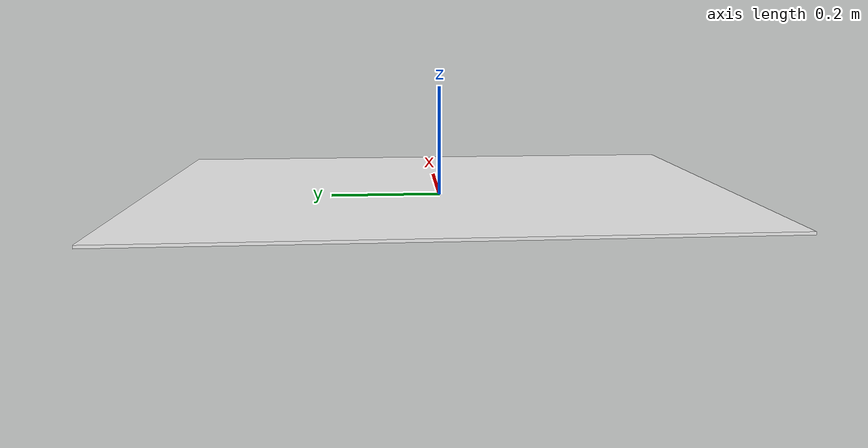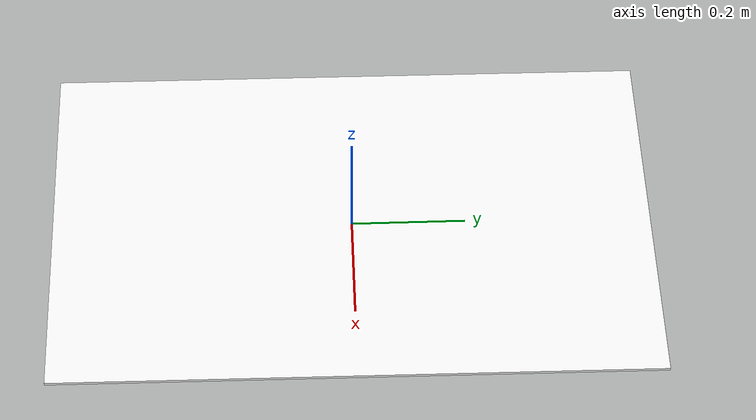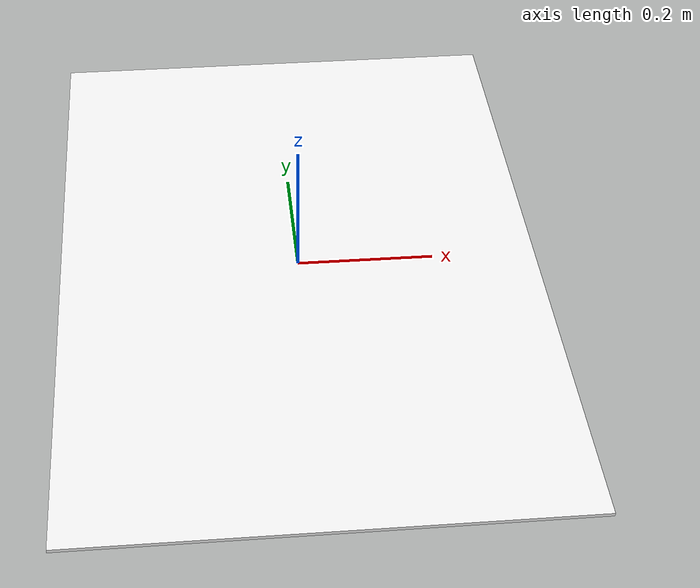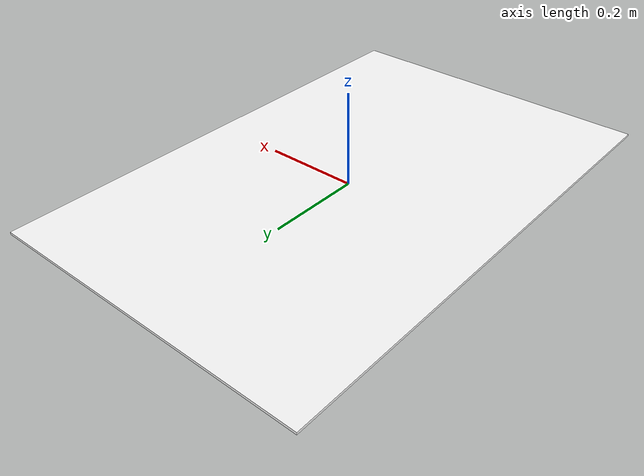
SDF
<?xml version="1.0" ?>
<sdf version="1.6">
  <model name="toxic_gas_marker">
    <static>true</static>

      <plugin
        filename="libignition-gazebo6-pose-publisher-system.so"
        name="ignition::gazebo::systems::PosePublisher">
        <publish_link_pose>true</publish_link_pose>
        <publish_sensor_pose>true</publish_sensor_pose>
      </plugin>

      <!--  gas emitter plugin -->
      <plugin name="gas_emitter" filename="libgas_emitter.so">
        <!-- Raw‑value emitter -->
        <topic>/hazards/toxic_gas/raw</topic>
        <!-- publish rate, Hz -->
        <rate>10</rate>
        <!-- ±fractional noise added to every species -->
        <noise>0.05</noise>
      </plugin>

    <link name="toxic_gas_hazard_zone">

      <visual name="toxic_gas_visual">
        <pose>0 0 0.01 0 0 0</pose>

        <geometry>
          <box>
            <size>0.7 1.05 0.005</size>  <!-- Oval shape (X=width, Y=height) -->
          </box>
        </geometry>

        <material>
          <ambient>1 1 1 1</ambient>
          <diffuse>1 1 1 1</diffuse>
          <specular>0.1 0.1 0.1 1</specular>
          <pbr>
            <metal>
              <albedo_map>model://hazard_overlays/toxic_gas_marker/materials/textures/toxic_gas_marker_elliptical_fade.png</albedo_map>
              <roughness>0.4</roughness>
              <metalness>0.0</metalness>
            </metal>
          </pbr>
        </material>

        <cast_shadows>false</cast_shadows>
      </visual>

    </link>
  </model>
</sdf>
